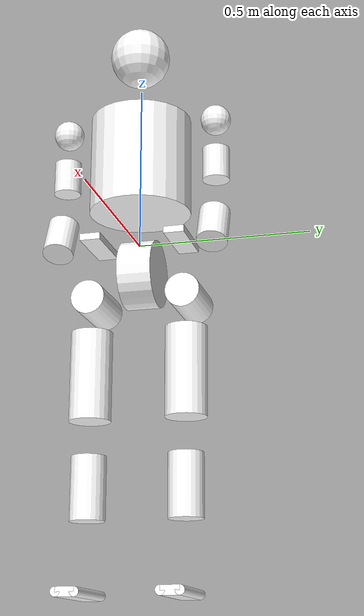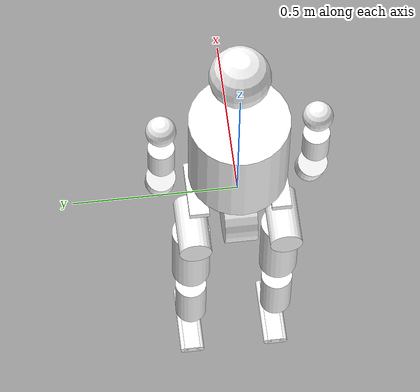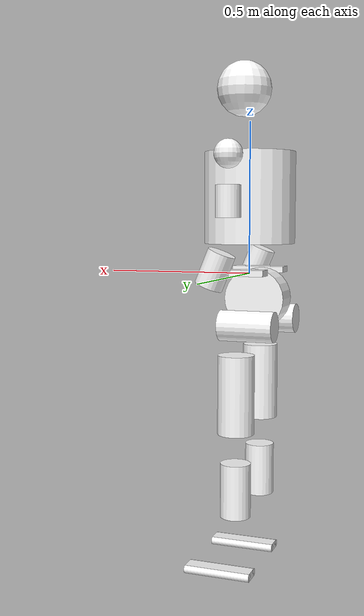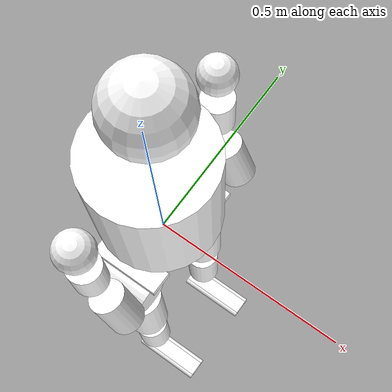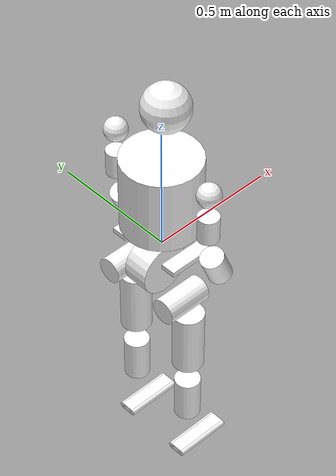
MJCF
<?xml version='1.0' encoding='UTF-8'?>
<mujoco model="GR2">
    <compiler angle="radian"/>
    <worldbody>
        <body name="base_link">
            <inertial pos="-0.0030357 6.968e-05 -0.087284" quat="0.705728 0.707896 -0.0206642 0.0201244" mass="6.6598" diaginertia="0.04838 0.0411671 0.0307809"/>
            <geom size="0.09 0.03 0.01" pos="0 0.125 0.01" type="box" rgba="1 1 1 1"/>
            <geom size="0.09 0.03 0.01" pos="0 -0.125 0.01" type="box" rgba="1 1 1 1"/>
            <geom size="0.1 0.05" pos="-0.03 0 -0.08" quat="0.707388 0.706825 0 0" type="cylinder" rgba="1 1 1 1"/>
            <body name="waist_yaw_link" pos="0 0 -0.0159">
                <inertial pos="-2.017e-05 8.88e-05 0.024104" quat="0.823866 0.000581997 0.000153429 0.566785" mass="0.67252" diaginertia="0.00106243 0.00106217 0.000590989"/>
                <joint name="waist_yaw_joint" pos="0 0 0" axis="0 0 1" range="-2.618 2.618" actuatorfrcrange="-74.45 74.45"/>
                <body name="torso_link" pos="0 0 0.39681">
                    <inertial pos="-0.0054214 0.0010624 -0.12326" quat="0.999966 0.00168327 0.00799333 0.00136367" mass="14.058" diaginertia="0.254537 0.215651 0.110662"/>
                    <geom size="0.15 0.15" pos="0 0 -0.13" type="cylinder" rgba="1 1 1 1"/>
                    <body name="head_yaw_link" pos="0.001 0 0.11061">
                        <inertial pos="0 0.0099543 0.0065646" quat="0.972635 -0.232338 0 0" mass="0.1402" diaginertia="0.00012944 0.000126981 2.79892e-05"/>
                        <joint name="head_yaw_joint" pos="0 0 0" axis="0 0 1" range="-1.3963 1.3963" actuatorfrcrange="-17.325 17.325"/>
                        <body name="head_pitch_link" pos="0 0 0.044185">
                            <inertial pos="0.031582 0.0012059 0.072239" quat="0.694215 0.113508 0.0964382 0.704188" mass="1.6096" diaginertia="0.0104269 0.00789733 0.00590535"/>
                            <joint name="head_pitch_joint" pos="0 0 0" axis="0 1 0" range="-0.5236 0.5236" actuatorfrcrange="-17.325 17.325"/>
                            <geom size="0.09" pos="0.02 0 0.07" rgba="1 1 1 1"/>
                            <body name="camera_link" pos="0.11296 0 0.09815">
                                <inertial pos="0 0 0" mass="0" diaginertia="0 0 0"/>
                            </body>
                        </body>
                    </body>
                    <body name="left_upper_arm_pitch_link" pos="0 0.15115 0">
                        <inertial pos="0.0022312 0.040265 3.797e-05" quat="0.706989 0.706971 -0.0130037 -0.0137803" mass="1.3432" diaginertia="0.00318387 0.0030442 0.00125333"/>
                        <joint name="left_shoulder_pitch_joint" pos="0 0 0" axis="0 1 0" range="-2.9671 2.9671" actuatorfrcrange="-74.45 74.45"/>
                        <body name="left_upper_arm_roll_link" pos="0 0.078848 0">
                            <inertial pos="0.0087432 0.0022878 -0.038787" quat="0.731821 0.0644488 0.0680057 0.675026" mass="0.96142" diaginertia="0.00280254 0.00267381 0.000848354"/>
                            <joint name="left_shoulder_roll_joint" pos="0 0 0" axis="1 0 0" range="-0.5236 2.7925" actuatorfrcrange="-74.45 74.45"/>
                            <geom size="0.045" rgba="1 1 1 1"/>
                            <body name="left_upper_arm_yaw_link" pos="0 0 -0.09438">
                                <inertial pos="-0.00056161 0.0012137 -0.091108" quat="0.711973 0.00606212 -0.00534792 0.70216" mass="1.3181" diaginertia="0.00680739 0.0067903 0.0010838"/>
                                <joint name="left_shoulder_yaw_joint" pos="0 0 0" axis="0 0 1" range="-1.8326 1.8326" actuatorfrcrange="-42.75 42.75"/>
                                <geom size="0.04 0.05" pos="0 0 -0.05" type="cylinder" rgba="1 1 1 1"/>
                                <body name="left_lower_arm_pitch_link" pos="0 0 -0.16111" quat="0.980795 0 -0.195042 0">
                                    <inertial pos="-0.0014862 0.006973 -0.021097" quat="0.988022 -0.153585 0.00398239 -0.014411" mass="0.45807" diaginertia="0.000689859 0.000595495 0.000367996"/>
                                    <joint name="left_elbow_pitch_joint" pos="0 0 0" axis="0 1 0" range="-1.5272 0.47997" actuatorfrcrange="-42.75 42.75"/>
                                    <body name="left_hand_yaw_link" pos="0 0 -0.058525">
                                        <inertial pos="0.00027991 0.0038031 -0.062955" quat="0.998141 0.0514847 -0.00557981 -0.0321454" mass="1.0855" diaginertia="0.00236057 0.00224794 0.00087367"/>
                                        <joint name="left_wrist_yaw_joint" pos="0 0 0" axis="0 0 1" range="-1.8326 1.8326" actuatorfrcrange="-17.325 17.325"/>
                                        <geom size="0.045 0.0575" pos="0 0 -0.05" type="cylinder" rgba="1 1 1 1"/>
                                        <body name="left_hand_pitch_link" pos="0 0 -0.16102">
                                            <inertial pos="0.0045911 2.426e-05 1.61e-06" quat="-0.0155445 0.706062 -0.00651386 0.707949" mass="0.51916" diaginertia="0.000255667 0.000248968 0.000219855"/>
                                            <joint name="left_wrist_pitch_joint" pos="0 0 0" axis="0 1 0" range="-0.61087 0.61087" actuatorfrcrange="-17.325 17.325"/>
                                            <body name="left_hand_roll_link">
                                                <inertial pos="0.0081828 -4.116e-05 -0.022647" quat="0.587819 0.393139 0.393652 0.587323" mass="0.14059" diaginertia="0.00015239 0.000137523 7.30769e-05"/>
                                                <joint name="left_wrist_roll_joint" pos="0 0 0" axis="1 0 0" range="-0.95993 0.95993" actuatorfrcrange="-17.325 17.325"/>
                                                <body name="left_end_effector_link" pos="0 0 -0.052">
                                                    <inertial pos="0 0 0" mass="0" diaginertia="0 0 0"/>
                                                </body>
                                            </body>
                                        </body>
                                    </body>
                                </body>
                            </body>
                        </body>
                    </body>
                    <body name="right_upper_arm_pitch_link" pos="0 -0.1585 0">
                        <inertial pos="0.0022312 -0.040265 3.797e-05" quat="0.706971 0.706989 0.0137803 0.0130037" mass="1.3432" diaginertia="0.00318387 0.0030442 0.00125333"/>
                        <joint name="right_shoulder_pitch_joint" pos="0 0 0" axis="0 1 0" range="-2.9671 2.9671" actuatorfrcrange="-74.45 74.45"/>
                        <body name="right_upper_arm_roll_link" pos="0 -0.071498 0">
                            <inertial pos="0.0087432 -0.0022878 -0.038787" quat="0.675026 0.0680057 0.0644488 0.731821" mass="0.96142" diaginertia="0.00280254 0.00267381 0.000848354"/>
                            <joint name="right_shoulder_roll_joint" pos="0 0 0" axis="1 0 0" range="-2.7925 0.5236" actuatorfrcrange="-74.45 74.45"/>
                            <geom size="0.045" rgba="1 1 1 1"/>
                            <body name="right_upper_arm_yaw_link" pos="0 0 -0.09438">
                                <inertial pos="-0.00056161 -0.0012137 -0.091108" quat="0.70216 -0.00534792 0.00606212 0.711973" mass="1.3181" diaginertia="0.00680739 0.0067903 0.0010838"/>
                                <joint name="right_shoulder_yaw_joint" pos="0 0 0" axis="0 0 1" range="-1.8326 1.8326" actuatorfrcrange="-42.75 42.75"/>
                                <geom size="0.04 0.05" pos="0 0 -0.05" type="cylinder" rgba="1 1 1 1"/>
                                <body name="right_lower_arm_pitch_link" pos="0 0 -0.16111" quat="0.98079 0 -0.195066 0">
                                    <inertial pos="-0.0014862 -0.006973 -0.021097" quat="0.988022 0.153585 0.00398239 0.014411" mass="0.45807" diaginertia="0.000689859 0.000595495 0.000367996"/>
                                    <joint name="right_elbow_pitch_joint" pos="0 0 0" axis="0 1 0" range="-1.5272 0.47997" actuatorfrcrange="-42.75 42.75"/>
                                    <body name="right_hand_yaw_link" pos="0 0 -0.058525">
                                        <inertial pos="0.00027991 -0.0038031 -0.062955" quat="0.998141 -0.0514847 -0.00557981 0.0321454" mass="1.0855" diaginertia="0.00236057 0.00224794 0.00087367"/>
                                        <joint name="right_wrist_yaw_joint" pos="0 0 0" axis="0 0 1" range="-1.8326 1.8326" actuatorfrcrange="-17.325 17.325"/>
                                        <geom size="0.045 0.05775" pos="0 0 -0.05" type="cylinder" rgba="1 1 1 1"/>
                                        <body name="right_hand_pitch_link" pos="0 0 -0.16102">
                                            <inertial pos="0.0045911 -2.426e-05 1.61e-06" quat="0.0155445 0.706062 0.00651386 0.707949" mass="0.51916" diaginertia="0.000255667 0.000248968 0.000219855"/>
                                            <joint name="right_wrist_pitch_joint" pos="0 0 0" axis="0 1 0" range="-0.61087 0.61087" actuatorfrcrange="-17.325 17.325"/>
                                            <body name="right_hand_roll_link">
                                                <inertial pos="0.0081828 4.116e-05 -0.022647" quat="0.587323 0.393652 0.393139 0.587819" mass="0.14059" diaginertia="0.00015239 0.000137523 7.30769e-05"/>
                                                <joint name="right_wrist_roll_joint" pos="0 0 0" axis="1 0 0" range="-0.95993 0.95993" actuatorfrcrange="-17.325 17.325"/>
                                                <body name="right_end_effector_link" pos="0 0 -0.052">
                                                    <inertial pos="0 0 0" mass="0" diaginertia="0 0 0"/>
                                                </body>
                                            </body>
                                        </body>
                                    </body>
                                </body>
                            </body>
                        </body>
                    </body>
                </body>
            </body>
            <body name="left_thigh_pitch_link" pos="0 0.076867 -0.12355" quat="0.965926 -0.25882 0 0">
                <inertial pos="-0.035065 0.036467 0.0020083" quat="0.148217 0.621705 -0.336914 0.691378" mass="2.61" diaginertia="0.0117524 0.0112934 0.00485715"/>
                <joint name="left_hip_pitch_joint" pos="0 0 0" axis="0 1 0" range="-2.618 2.618" actuatorfrcrange="-366.05 366.05"/>
                <body name="left_thigh_roll_link" pos="-0.062 0.0729 0" quat="0.965926 0.25882 0 0">
                    <inertial pos="0.027776 -0.00010848 -0.0074687" quat="-0.00754734 0.775274 -0.0068887 0.631542" mass="1.3487" diaginertia="0.00283572 0.00263683 0.00111045"/>
                    <joint name="left_hip_roll_joint" pos="0 0 0" axis="1 0 0" range="-0.59341 1.5708" actuatorfrcrange="-127.296 127.296"/>
                    <geom size="0.05 0.09" pos="0.025 0 0" quat="0.707388 0 0.706825 0" type="cylinder" rgba="1 1 1 1"/>
                    <body name="left_thigh_yaw_link" pos="0.062 0 -0.03495">
                        <inertial pos="0.0010147 -0.012758 -0.14387" quat="0.678148 0.00564457 -0.015008 0.73475" mass="5.1152" diaginertia="0.0432183 0.0422948 0.00988572"/>
                        <joint name="left_hip_yaw_joint" pos="0 0 0" axis="0 0 1" range="-0.69813 1.5708" actuatorfrcrange="-94.2 94.2"/>
                        <geom size="0.06 0.13" pos="0 0 -0.19" type="cylinder" rgba="1 1 1 1"/>
                        <body name="left_shank_pitch_link" pos="0 0 -0.34305">
                            <inertial pos="0.004743 -0.0014414 -0.1756" quat="0.692529 0.0125941 -0.0117144 0.721185" mass="3.5932" diaginertia="0.0354035 0.0348803 0.00428939"/>
                            <joint name="left_knee_pitch_joint" pos="0 0 0" axis="0 1 0" range="-0.087266 2.3562" actuatorfrcrange="-366.05 366.05"/>
                            <geom size="0.05 0.09" pos="0 0 -0.165" type="cylinder" rgba="1 1 1 1"/>
                            <body name="left_foot_pitch_link" pos="0 0 -0.406">
                                <inertial pos="0.026267 1.226e-05 0.0010987" quat="-0.0560581 0.713517 -0.0571676 0.696049" mass="0.17877" diaginertia="0.000220267 0.000219111 1.24827e-05"/>
                                <joint name="left_ankle_pitch_joint" pos="0 0 0" axis="0 1 0" range="-0.7854 0.7854" actuatorfrcrange="-94.2 94.2"/>
                                <body name="left_foot_roll_link">
                                    <inertial pos="0.050086 0.006159 -0.032795" quat="-0.0752306 0.721459 -0.127307 0.676484" mass="1.1232" diaginertia="0.00729384 0.00667953 0.00120783"/>
                                    <joint name="left_ankle_roll_joint" pos="0 0 0" axis="1 0 0" range="-0.38397 0.38397" actuatorfrcrange="-29.835 29.835"/>
                                    <geom size="0.013 0.1125" pos="0.055 0.026 -0.045" quat="0.707141 0 0.707073 0" type="cylinder" rgba="1 1 1 1"/>
                                    <geom size="0.1125 0.026 0.013" pos="0.055 0 -0.045" type="box" rgba="1 1 1 1"/>
                                    <geom size="0.013 0.1125" pos="0.055 -0.026 -0.045" quat="0.707141 0 0.707073 0" type="cylinder" rgba="1 1 1 1"/>
                                </body>
                            </body>
                        </body>
                    </body>
                </body>
            </body>
            <body name="right_thigh_pitch_link" pos="0 -0.076867 -0.12355" quat="0.965926 0.25882 0 0">
                <inertial pos="-0.035065 -0.036467 0.0020083" quat="-0.148217 0.621705 0.336914 0.691378" mass="2.61" diaginertia="0.0117524 0.0112934 0.00485715"/>
                <joint name="right_hip_pitch_joint" pos="0 0 0" axis="0 1 0" range="-2.618 2.618" actuatorfrcrange="-366.05 366.05"/>
                <body name="right_thigh_roll_link" pos="-0.062 -0.0729 0" quat="0.965926 -0.25882 0 0">
                    <inertial pos="0.027776 0.00010848 -0.0074687" quat="0.00754734 0.775274 0.0068887 0.631542" mass="1.3487" diaginertia="0.00283572 0.00263683 0.00111045"/>
                    <joint name="right_hip_roll_joint" pos="0 0 0" axis="1 0 0" range="-1.5708 0.59341" actuatorfrcrange="-127.296 127.296"/>
                    <geom size="0.05 0.09" pos="0.025 0 0" quat="0.707388 0 0.706825 0" type="cylinder" rgba="1 1 1 1"/>
                    <body name="right_thigh_yaw_link" pos="0.062 0 -0.03495">
                        <inertial pos="0.0010147 0.012758 -0.14387" quat="0.73475 -0.015008 0.00564457 0.678148" mass="5.1152" diaginertia="0.0432183 0.0422948 0.00988572"/>
                        <joint name="right_hip_yaw_joint" pos="0 0 0" axis="0 0 1" range="-1.5708 0.69813" actuatorfrcrange="-94.2 94.2"/>
                        <geom size="0.06 0.13" pos="0 0 -0.19" type="cylinder" rgba="1 1 1 1"/>
                        <body name="right_shank_pitch_link" pos="0 0 -0.34305">
                            <inertial pos="0.004743 0.0014414 -0.1756" quat="0.721185 -0.0117144 0.0125941 0.692529" mass="3.5932" diaginertia="0.0354035 0.0348803 0.00428939"/>
                            <joint name="right_knee_pitch_joint" pos="0 0 0" axis="0 1 0" range="-0.087266 2.3562" actuatorfrcrange="-366.05 366.05"/>
                            <geom size="0.05 0.09" pos="0 0 -0.165" type="cylinder" rgba="1 1 1 1"/>
                            <body name="right_foot_pitch_link" pos="0 0 -0.406">
                                <inertial pos="0.026267 -1.226e-05 0.0010987" quat="0.0560581 0.713517 0.0571676 0.696049" mass="0.17877" diaginertia="0.000220267 0.000219111 1.24827e-05"/>
                                <joint name="right_ankle_pitch_joint" pos="0 0 0" axis="0 1 0" range="-0.7854 0.7854" actuatorfrcrange="-94.2 94.2"/>
                                <body name="right_foot_roll_link">
                                    <inertial pos="0.050086 -0.006159 -0.032795" quat="0.0752306 0.721459 0.127307 0.676484" mass="1.1232" diaginertia="0.00729384 0.00667953 0.00120783"/>
                                    <joint name="right_ankle_roll_joint" pos="0 0 0" axis="1 0 0" range="-0.38397 0.38397" actuatorfrcrange="-29.835 29.835"/>
                                    <geom size="0.013 0.1125" pos="0.055 0.026 -0.045" quat="0.707141 0 0.707073 0" type="cylinder" rgba="1 1 1 1"/>
                                    <geom size="0.1125 0.026 0.013" pos="0.055 0 -0.045" type="box" rgba="1 1 1 1"/>
                                    <geom size="0.013 0.1125" pos="0.055 -0.026 -0.045" quat="0.707141 0 0.707073 0" type="cylinder" rgba="1 1 1 1"/>
                                </body>
                            </body>
                        </body>
                    </body>
                </body>
            </body>
            <body name="imu_link" pos="-0.059 0 -0.068">
                <inertial pos="0 0 0" mass="0" diaginertia="0 0 0"/>
            </body>
        </body>
    </worldbody>
</mujoco>
